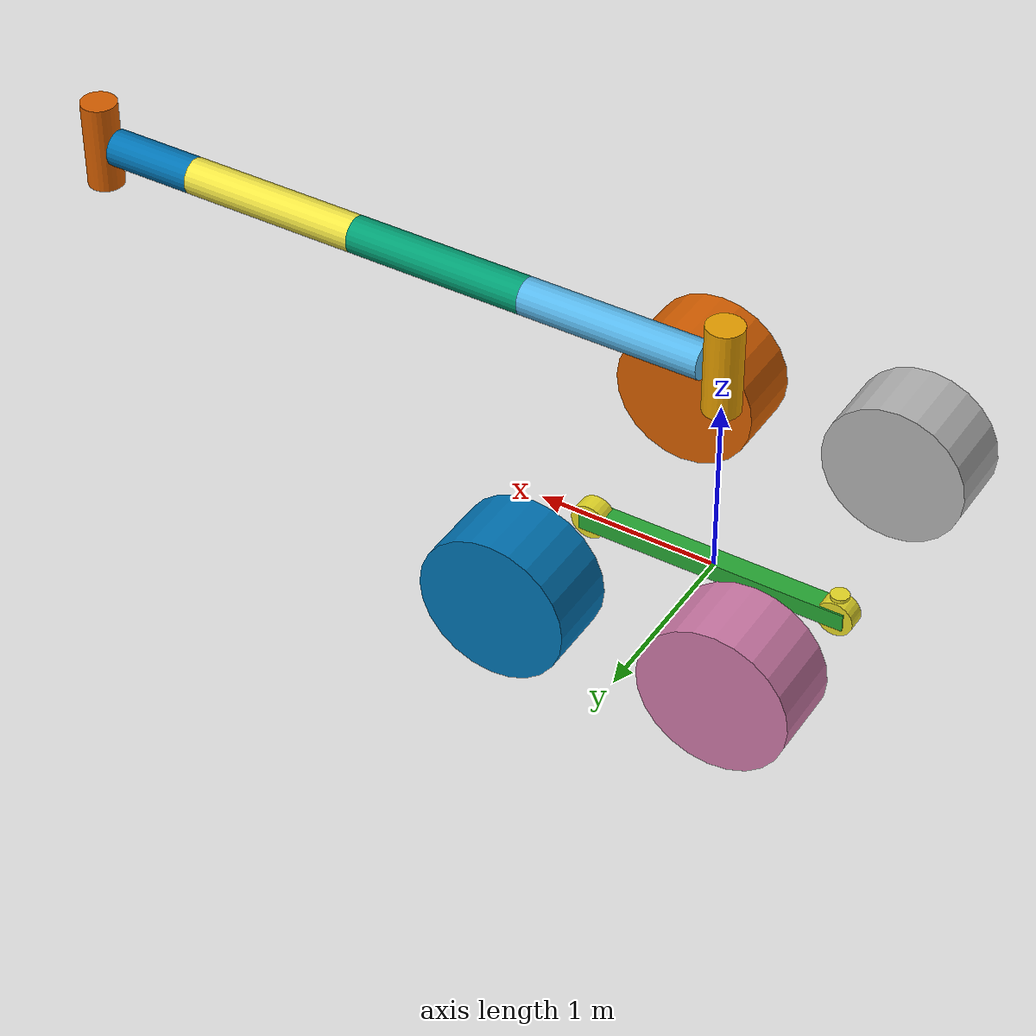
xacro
<?xml version="1.0"?>
<robot name="mobile_manipulator_forklift" xmlns:xacro="http://wiki.ros.org/xacro">
  <!-- Include xacro for inertials, materials and wheels -->
  <xacro:include filename="$(find forklift_project)/urdf/wheel.xacro"/>
  <xacro:include filename="$(find forklift_project)/urdf/common_macros.xacro" />

  <xacro:property name="robot_namespace" value="/mobile_manipulator_forklift"/>

  <!-- Gazebo plugins -->
  <gazebo>
    <!-- Load ros_control plugin -->
    <plugin name="gazebo_ros_control" filename="libgazebo_ros_control.so">
      <robotNamespace>${robot_namespace}</robotNamespace>
      <robotSimType>gazebo_ros_control/DefaultRobotHWSim</robotSimType>
      <legacyModeNS>false</legacyModeNS>
    </plugin>

    <!-- Load gazebo_ros plugin. Publish passive (non-actuated) joints from Gazebo -->
    <plugin name="gazebo_ros_joint_state_publisher" filename="libgazebo_ros_joint_state_publisher.so">
        <robotNamespace>${robot_namespace}</robotNamespace>
        <jointName>
            front_wheel_joint
        </jointName>
        <updateRate>50</updateRate>
        <alwaysOn>true</alwaysOn>
    </plugin>
  </gazebo>

  <!-- Math constants -->
  <xacro:property name="deg_to_rad" value="0.01745329251994329577"/>

  <!-- Robot base dimensions -->
  <xacro:property name="base_length" value="1.5" />
  <xacro:property name="base_width" value="0.12" />
  <xacro:property name="base_height" value="0.1" />
  <xacro:property name="base_mass" value="5" />

  <!-- Wheel link dimensions -->
  <xacro:property name="wheel_radius" value="0.1" />
  <xacro:property name="wheel_thickness" value="0.1" />
  <xacro:property name="wheel_mass" value="1" />

  <!-- Steering link dimensions -->
  <xacro:property name="steer_radius" value="0.05" />
  <xacro:property name="steer_thickness" value="0.02" />
  <xacro:property name="steer_mass" value="1" />

  <!-- Axle positions -->
  <xacro:property name="axle_offset" value="1.45" />
  <xacro:property name="steer_offset" value="0.02" />

  <!-- Base link -->
  <link name="base_link">
    <visual>
      <origin xyz="0 0 0" rpy="0 0 0"/>
      <geometry>
        <box size="${base_length} ${base_width} ${base_height}"/>
      </geometry>
      <material name="green" />
    </visual>
    <collision>
      <origin xyz="0 0 0" rpy="0 0 0"/>
      <geometry>
        <box size="${base_length} ${base_width} ${base_height}"/>
      </geometry>
    </collision>
    <xacro:solid_cuboid_inertial
        rpy="0 0 0" xyz="0 0 0"
        mass="${base_mass}"
        x="${base_length}" y="${base_width}" z="${base_height}" />
  </link>

  <!-- Front steer and rear wheel joints required for ackermann_steering_controller -->
  <xacro:front_steer
    name="front"
    parent="base"
    steer_radius="${steer_radius}"
    steer_thickness="${steer_thickness}"
    steer_mass="${steer_mass}"
    base_length="${base_length}"
    base_width="${base_width}"
    axle_offset="${axle_offset}"
    steer_height="${wheel_radius+steer_offset}">
  </xacro:front_steer>

  <xacro:front_wheel
    name="front"
    parent="front_steer"
    wheel_radius="${wheel_radius}"
    wheel_thickness="${wheel_thickness}"
    wheel_mass="${wheel_mass}">
    <origin xyz="0 0 ${-wheel_radius-steer_offset}" rpy="${-90 * deg_to_rad} 0 0"/>
  </xacro:front_wheel>

  <xacro:rear_wheel
    name="rear"
    parent="base"
    wheel_radius="${wheel_radius}"
    wheel_thickness="${wheel_thickness}"
    wheel_mass="${wheel_mass}">
    <origin xyz="${-base_length/2+axle_offset} 0 0" rpy="${-90 * deg_to_rad} 0 0"/>
  </xacro:rear_wheel>

  <!-- Colour -->
  <gazebo reference="base_link">
    <material>Gazebo/Green</material>
  </gazebo>

  <!-- FRONT LEFT WHEEL -->
<joint type="continuous" name="wheel_front_left_joint">
  <origin xyz="0.60 0.95 0.30" rpy="-${pi/2} 0 0"/>
  <child link="wheel_front_left_link"/>
  <parent link="base_link"/>
  <axis xyz="0 0 1" rpy="0 0 0"/>
  <limit effort="100" velocity="100"/>
</joint>

<xacro:link_cylinder link_name="wheel_front_left_link" radius="0.4" length="0.4" density="1" mesh_name="nofile" >
  <!-- origin visual -->
  <origin xyz="0 0 0" rpy="0 0 0"/>
  <!-- origin collision -->
  <origin xyz="0 0 0" rpy="0 0 0"/>
  <!-- origin interia -->
  <origin xyz="0 0 0" rpy="0 0 0"/>
</xacro:link_cylinder>

<!-- FRONT RIGHT WHEEL -->
<joint type="continuous" name="wheel_front_right_joint">
  <origin xyz="0.60 -0.95 0.30" rpy="-${pi/2} 0 0"/>
  <child link="wheel_front_right_link"/>
  <parent link="base_link"/>
  <axis xyz="0 0 1" rpy="0 0 0"/>
  <limit effort="100" velocity="100"/>
</joint>

<xacro:link_cylinder link_name="wheel_front_right_link" radius="0.4" length="0.4" density="1" >
  <!-- origin visual -->
  <origin xyz="0 0 0" rpy="0 0 0"/>
  <!-- origin collision -->
  <origin xyz="0 0 0" rpy="0 0 0"/>
  <!-- origin interia -->
  <origin xyz="0 0 0" rpy="0 0 0"/>
</xacro:link_cylinder>

<!-- REAR LEFT WHEEL -->
<joint type="continuous" name="wheel_rear_left_joint">
  <origin xyz="-0.60 0.95 0.30" rpy="-${pi/2} 0 0"/>
  <child link="wheel_rear_left_link"/>
  <parent link="base_link"/>
  <axis xyz="0 0 1" rpy="0 0 0"/>
  <limit effort="100" velocity="100"/>
</joint>

<xacro:link_cylinder link_name="wheel_rear_left_link" radius="0.4" length="0.4" density="1" mesh_name="nofile" >
  <!-- origin visual -->
  <origin xyz="0 0 0" rpy="0 0 0"/>
  <!-- origin collision -->
  <origin xyz="0 0 0" rpy="0 0 0"/>
  <!-- origin interia -->
  <origin xyz="0 0 0" rpy="0 0 0"/>
</xacro:link_cylinder>

<!-- REAR RIGHT WHEEL -->
<joint type="continuous" name="wheel_rear_right_joint">
  <origin xyz="-0.60 -0.95 0.30" rpy="-${pi/2} 0 0"/>
  <child link="wheel_rear_right_link"/>
  <parent link="base_link"/>
  <axis xyz="0 0 1" rpy="0 0 0"/>
  <limit effort="100" velocity="100"/>
</joint>

<xacro:link_cylinder link_name="wheel_rear_right_link" radius="0.4" length="0.4" density="1" mesh_name="nofile" >
  <!-- origin visual -->
  <origin xyz="0 0 0" rpy="0 0 0"/>
  <!-- origin collision -->
  <origin xyz="0 0 0" rpy="0 0 0"/>
  <!-- origin interia -->
  <origin xyz="0 0 0" rpy="0 0 0"/>
</xacro:link_cylinder>

  <!-- ROBOTIC ARM -->

  <!-- ARM BASE -->
  <joint type="revolute" name="arm_base_joint">
    <origin xyz="0 0 1" rpy="0 0 0"/>
    <child link="arm_base_link"/>
    <parent link="base_link"/>
    <axis xyz="0 0 1" rpy="0 0 0"/>
    <limit effort="100" velocity="100" lower="-${pi}" upper="${pi}"/>
  </joint>
 
  <xacro:link_cylinder link_name="arm_base_link" radius="0.1" length="0.5" density="1" mesh_name="nofile" >
    <!-- origin visual -->
    <origin xyz="0 0 0.25" rpy="0 0 0"/>
    <!-- origin collision -->
    <origin xyz="0 0 0.25" rpy="0 0 0"/>
    <!-- origin interia -->
    <origin xyz="0 0 0.25" rpy="0 0 0"/>
  </xacro:link_cylinder>
 
<transmission name="arm_base_tran">
  <type>transmission_interface/SimpleTransmission</type>
  <joint name="arm_base_joint">
    <hardwareInterface>hardware_interface/PositionJointInterface</hardwareInterface>
  </joint>
  <actuator name="arm_base_motor">
    <hardwareInterface>hardware_interface/PositionJointInterface</hardwareInterface>
    <mechanicalReduction>1</mechanicalReduction>
  </actuator>
</transmission>
 
  <!-- LINK 1 -->
  <joint type="revolute" name="link_1_joint">
    <origin xyz="0.1 0 0.25" rpy="0 1.57079633 0"/>
    <child link="link_1_link"/>
    <parent link="arm_base_link"/>
    <axis xyz="0 1 0" rpy="0 0 0"/>
    <limit effort="100" velocity="100" lower="-${pi}" upper="${pi}"/>
  </joint>
 
  <xacro:link_cylinder link_name="link_1_link" radius="0.1" length="1" density="1" mesh_name="nofile" >
    <!-- origin visual -->
    <origin xyz="0 0 0.5" rpy="0 0 0"/>
    <!-- origin collision -->
    <origin xyz="0 0 0.5" rpy="0 0 0"/>
    <!-- origin interia -->
    <origin xyz="0 0 0.5" rpy="0 0 0"/>
  </xacro:link_cylinder>
 
<transmission name="link_1_tran">
  <type>transmission_interface/SimpleTransmission</type>
  <joint name="link_1_joint">
    <hardwareInterface>hardware_interface/PositionJointInterface</hardwareInterface>
  </joint>
  <actuator name="link_1_motor">
    <hardwareInterface>hardware_interface/PositionJointInterface</hardwareInterface>
    <mechanicalReduction>1</mechanicalReduction>
  </actuator>
</transmission>

    <!-- LINK 2 -->
    <joint type="revolute" name="link_2_joint">
      <origin xyz="0 0 1" rpy="0 0 0"/>
      <child link="link_2_link"/>
      <parent link="link_1_link"/>
      <axis xyz="0 1 0" rpy="0 0 0"/>
      <limit effort="100" velocity="100" lower="-${pi}" upper="${pi}"/>
    </joint>

    <xacro:link_cylinder link_name="link_2_link" radius="0.1" length="1" density="1" mesh_name="nofile" >
      <!-- origin visual -->
      <origin xyz="0 0 0.5" rpy="0 0 0"/>
      <!-- origin collision -->
      <origin xyz="0 0 0.5" rpy="0 0 0"/>
      <!-- origin interia -->
      <origin xyz="0 0 0.5" rpy="0 0 0"/>
    </xacro:link_cylinder>

  <transmission name="link_2_tran">
    <type>transmission_interface/SimpleTransmission</type>
    <joint name="link_2_joint">
      <hardwareInterface>hardware_interface/PositionJointInterface</hardwareInterface>
    </joint>
    <actuator name="link_2_motor">
      <hardwareInterface>hardware_interface/PositionJointInterface</hardwareInterface>
      <mechanicalReduction>1</mechanicalReduction>
    </actuator>
  </transmission>

    <!-- LINK 3 -->
    <joint type="revolute" name="link_3_joint">
      <origin xyz="0 0 1" rpy="0 0 0"/>
      <child link="link_3_link"/>
      <parent link="link_2_link"/>
      <axis xyz="0 1 0" rpy="0 0 0"/>
      <limit effort="100" velocity="100" lower="-${pi}" upper="${pi}"/>
    </joint>

    <xacro:link_cylinder link_name="link_3_link" radius="0.1" length="1" density="1" mesh_name="nofile" >
      <!-- origin visual -->
      <origin xyz="0 0 0.5" rpy="0 0 0"/>
      <!-- origin collision -->
      <origin xyz="0 0 0.5" rpy="0 0 0"/>
      <!-- origin interia -->
      <origin xyz="0 0 0.5" rpy="0 0 0"/>
    </xacro:link_cylinder>

    <transmission name="link_3_tran">
      <type>transmission_interface/SimpleTransmission</type>
      <joint name="link_3_joint">
        <hardwareInterface>hardware_interface/PositionJointInterface</hardwareInterface>
      </joint>
      <actuator name="link_3_motor">
        <hardwareInterface>hardware_interface/PositionJointInterface</hardwareInterface>
        <mechanicalReduction>1</mechanicalReduction>
      </actuator>
    </transmission>

    <!-- LINK 4 -->
    <joint type="revolute" name="link_4_joint">
      <origin xyz="0 0 1" rpy="0 0 0"/>
      <child link="link_4_link"/>
      <parent link="link_3_link"/>
      <axis xyz="0 1 0" rpy="0 0 0"/>
      <limit effort="100" velocity="100" lower="-${pi}" upper="${pi}"/>
    </joint>

    <xacro:link_cylinder link_name="link_4_link" radius="0.1" length="0.5" density="1" mesh_name="nofile" >
      <!-- origin visual -->
      <origin xyz="0 0 0.25" rpy="0 0 0"/>
      <!-- origin collision -->
      <origin xyz="0 0 0.25" rpy="0 0 0"/>
      <!-- origin interia -->
      <origin xyz="0 0 0.25" rpy="0 0 0"/>
    </xacro:link_cylinder>

  <transmission name="link_4_tran">
    <type>transmission_interface/SimpleTransmission</type>
    <joint name="link_4_joint">
      <hardwareInterface>hardware_interface/PositionJointInterface</hardwareInterface>
    </joint>
    <actuator name="link_4_motor">
      <hardwareInterface>hardware_interface/PositionJointInterface</hardwareInterface>
      <mechanicalReduction>1</mechanicalReduction>
    </actuator>
  </transmission>
 <!-- endret z fra 1 til 0 her -->

  <!-- LINK 5 -->
  <joint type="revolute" name="link_5_joint">
    <origin xyz="0 0 0.5" rpy="0 0 0"/>
    <child link="link_5_link"/>
    <parent link="link_4_link"/>
    <axis xyz="0 0 1" rpy="0 0 0"/>
    <limit effort="100" velocity="100" lower="-${pi}" upper="${pi}"/>
  </joint>

  <xacro:link_cylinder link_name="link_5_link" radius="0.1" length="0.5" density="1" mesh_name="nofile" >
    <!-- origin visual -->2
    <origin xyz="0 0 0.1" rpy="0 ${pi/2} 0"/>
    <!-- origin collision -->
    <origin xyz="0 0 0.1" rpy="0 0 0"/>
    <!-- origin interia -->
    <origin xyz="0 0 0.1" rpy="0 ${pi/2} 0"/>
  </xacro:link_cylinder>

<transmission name="link_5_tran">
  <type>transmission_interface/SimpleTransmission</type>
  <joint name="link_5_joint">
    <hardwareInterface>hardware_interface/PositionJointInterface</hardwareInterface>
  </joint>
  <actuator name="link_5_motor">
    <hardwareInterface>hardware_interface/PositionJointInterface</hardwareInterface>
    <mechanicalReduction>1</mechanicalReduction>
  </actuator>
</transmission>

</robot>

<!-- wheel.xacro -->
<robot name="wheel" xmlns:xacro="http://wiki.ros.org/xacro">
  <!-- Include xacro for materials and inertials -->
  <xacro:include filename="$(find forklift_project)/urdf/materials.xacro"/>
  <xacro:include filename="$(find forklift_project)/urdf/inertials.xacro"/>

  <!-- Properties -->
  <xacro:property name="steer_effort" value="10.0"/>
  <xacro:property name="steer_velocity" value="5.0"/>
  <xacro:property name="steer_limit_deg" value="45.0"/>

  <!-- Bicycle model front steering link (required for steer_drive_controller) -->
  <xacro:macro name="front_steer"
    params="
      name
      parent
      steer_radius
      steer_thickness
      steer_mass
      base_length
      base_width
      axle_offset
      steer_height">
    <link name="${name}_steer_link">
      <visual>
        <origin xyz="0 0 0" rpy="0 0 0"/>
        <geometry>
          <cylinder radius="${steer_radius}" length="${steer_thickness}"/>
        </geometry>
        <material name="yellow" />
      </visual>
      <collision>
        <origin xyz="0 0 0" rpy="0 0 0"/>
        <geometry>
          <cylinder radius="${steer_radius}" length="${steer_thickness}"/>
        </geometry>
      </collision>
      <xacro:solid_cylinder_inertial
          rpy="0 0 0" xyz="0 0 0"
          mass="${steer_mass}"
          radius="${steer_radius}" length="${steer_thickness}" />
    </link>

    <joint name="${name}_steer_joint" type="revolute">
      <parent link="${parent}_link"/>
      <child link="${name}_steer_link"/>
      <origin xyz="${base_length/2-axle_offset} 0 ${steer_height}" rpy="0 0 0"/>
      <axis xyz="0 0 1"/>
      <limit effort="${steer_effort}"
             lower="${-45.0 * deg_to_rad}" upper="${45.0 * deg_to_rad}"
             velocity="${steer_velocity}"/>
    </joint>

    <transmission name="${name}_steer_joint_trans">
      <type>transmission_interface/SimpleTransmission</type>
      <actuator name="${name}_steer_joint_motor">
        <mechanicalReduction>1</mechanicalReduction>
        <hardwareInterface>hardware_interface/PositionJointInterface</hardwareInterface>
      </actuator>
      <joint name="${name}_steer_joint">
        <hardwareInterface>hardware_interface/PositionJointInterface</hardwareInterface>
      </joint>
    </transmission>

    <gazebo reference="${name}_steer_link">
      <material>Gazebo/Yellow</material>
    </gazebo>
  </xacro:macro>

  <!-- Car steering model front (steerable) wheel links (left/right) -->
  <xacro:macro name="front_wheel_lr"
    params="
      name
      parent
      reflect
      wheel_radius
      wheel_thickness
      wheel_mass
      steer_radius
      steer_thickness
      steer_mass
      base_length
      base_width
      axle_offset
      steer_height">
    <link name="${name}_steer_link">
      <visual>
        <origin xyz="0 0 0" rpy="0 0 0"/>
        <geometry>
          <cylinder radius="${steer_radius}" length="${steer_thickness}"/>
        </geometry>
        <material name="blue" />
      </visual>
      <collision>
        <origin xyz="0 0 0" rpy="0 0 0"/>
        <geometry>
          <cylinder radius="${steer_radius}" length="${steer_thickness}"/>
        </geometry>
      </collision>
      <xacro:solid_cylinder_inertial
          rpy="0 0 0" xyz="0 0 0"
          mass="${steer_mass}"
          radius="${steer_radius}" length="${steer_thickness}" />
    </link>

    <joint name="${name}_steer_joint" type="revolute">
      <parent link="${parent}_link"/>
      <child link="${name}_steer_link"/>
      <origin xyz="${base_length/2-axle_offset} ${reflect*(base_width/2+axle_offset)} ${steer_height}" rpy="0 0 0"/>
      <axis xyz="0 0 1"/>
      <limit effort="${steer_effort}"
             lower="${steer_limit_deg * deg_to_rad * -1.0}" upper="${steer_limit_deg * deg_to_rad}"
             velocity="${steer_velocity}"/>
    </joint>

    <link name="${name}_wheel_link">
      <visual>
        <origin xyz="0 0 0" rpy="0 0 0"/>
        <geometry>
          <cylinder radius="${wheel_radius}" length="${wheel_thickness}"/>
        </geometry>
        <material name="red" />
      </visual>
      <collision>
        <origin xyz="0 0 0" rpy="0 0 0"/>
        <geometry>
          <cylinder radius="${wheel_radius}" length="${wheel_thickness}"/>
        </geometry>
      </collision>
      <xacro:solid_cylinder_inertial
          rpy="0 0 0" xyz="0 0 0"
          mass="${wheel_mass}"
          radius="${wheel_radius}" length="${wheel_thickness}" />
    </link>

    <joint name="${name}_wheel_joint" type="continuous">
      <parent link="${name}_steer_link"/>
      <child link="${name}_wheel_link"/>
      <origin xyz="0 0 ${-steer_height}" rpy="${-90 * deg_to_rad} 0 0"/>
      <axis xyz="0 0 1"/>
    </joint>

    <transmission name="${name}_steer_joint_trans">
      <type>transmission_interface/SimpleTransmission</type>
      <actuator name="${name}_steer_joint_motor">
        <mechanicalReduction>1</mechanicalReduction>
        <hardwareInterface>hardware_interface/PositionJointInterface</hardwareInterface>
      </actuator>
      <joint name="${name}_steer_joint">
        <hardwareInterface>hardware_interface/PositionJointInterface</hardwareInterface>
      </joint>
    </transmission>

    <transmission name="${name}_wheel_joint_trans">
      <type>transmission_interface/SimpleTransmission</type>
      <actuator name="${name}_wheel_joint_motor">
        <mechanicalReduction>1</mechanicalReduction>
        <hardwareInterface>hardware_interface/VelocityJointInterface</hardwareInterface>
      </actuator>
      <joint name="${name}_wheel_joint">
        <hardwareInterface>hardware_interface/VelocityJointInterface</hardwareInterface>
      </joint>
    </transmission>

    <gazebo reference="${name}_steer_link">
      <material>Gazebo/Blue</material>
    </gazebo>

    <gazebo reference="${name}_wheel_link">
      <material>Gazebo/Red</material>
    </gazebo>
  </xacro:macro>

  <!-- Bicycle model rear wheel link (required for steer_drive_controller) -->
  <xacro:macro name="rear_wheel"
    params="
      name
      parent
      wheel_radius
      wheel_thickness
      wheel_mass
      *origin">
    <link name="${name}_wheel_link">
      <visual>
        <origin xyz="0 0 0" rpy="0 0 0"/>
        <geometry>
          <cylinder radius="${wheel_radius}" length="${wheel_thickness}"/>
        </geometry>
        <material name="yellow" />
      </visual>
      <collision>
        <origin xyz="0 0 0" rpy="0 0 0"/>
        <geometry>
          <cylinder radius="${wheel_radius}" length="${wheel_thickness}"/>
        </geometry>
      </collision>
      <xacro:solid_cylinder_inertial
          rpy="0 0 0" xyz="0 0 0"
          mass="${wheel_mass}"
          radius="${wheel_radius}" length="${wheel_thickness}" />
    </link>

    <joint name="${name}_wheel_joint" type="continuous">
      <parent link="${parent}_link"/>
      <child link="${name}_wheel_link"/>
      <xacro:insert_block name="origin"/>
      <axis xyz="0 0 1"/>
    </joint>

    <transmission name="${name}_wheel_joint_trans">
      <type>transmission_interface/SimpleTransmission</type>
      <actuator name="${name}_wheel_joint_motor">
        <mechanicalReduction>1</mechanicalReduction>
        <hardwareInterface>hardware_interface/VelocityJointInterface</hardwareInterface>
      </actuator>
      <joint name="${name}_wheel_joint">
        <hardwareInterface>hardware_interface/VelocityJointInterface</hardwareInterface>
      </joint>
    </transmission>

    <gazebo reference="${name}_wheel_link">
      <material>Gazebo/Yellow</material>
    </gazebo>
  </xacro:macro>

  <!-- Bicycle model front wheel link (passive - no transmission) -->
  <xacro:macro name="front_wheel"
    params="
      name
      parent
      wheel_radius
      wheel_thickness
      wheel_mass
      *origin">
    <link name="${name}_wheel_link">
      <visual>
        <origin xyz="0 0 0" rpy="0 0 0"/>
        <geometry>
          <cylinder radius="${wheel_radius}" length="${wheel_thickness}"/>
        </geometry>
        <material name="yellow" />
      </visual>
      <collision>
        <origin xyz="0 0 0" rpy="0 0 0"/>
        <geometry>
          <cylinder radius="${wheel_radius}" length="${wheel_thickness}"/>
        </geometry>
      </collision>
      <xacro:solid_cylinder_inertial
          rpy="0 0 0" xyz="0 0 0"
          mass="${wheel_mass}"
          radius="${wheel_radius}" length="${wheel_thickness}" />
    </link>

    <joint name="${name}_wheel_joint" type="continuous">
      <parent link="${parent}_link"/>
      <child link="${name}_wheel_link"/>
      <xacro:insert_block name="origin"/>
      <axis xyz="0 0 1"/>
    </joint>

    <gazebo reference="${name}_wheel_link">
      <material>Gazebo/Yellow</material>
    </gazebo>

    <gazebo reference="${name}_wheel_joint">
      <provideFeedback>true</provideFeedback>
    </gazebo>
  </xacro:macro>

  <!-- Car steering model rear wheel links (left/right) -->
  <xacro:macro name="rear_wheel_lr"
    params="
      name
      parent
      wheel_radius
      wheel_thickness
      wheel_mass
      *origin">
    <link name="${name}_wheel_link">
      <visual>
        <origin xyz="0 0 0" rpy="0 0 0"/>
        <geometry>
          <cylinder radius="${wheel_radius}" length="${wheel_thickness}"/>
        </geometry>
        <material name="red" />
      </visual>
      <collision>
        <origin xyz="0 0 0" rpy="0 0 0"/>
        <geometry>
          <cylinder radius="${wheel_radius}" length="${wheel_thickness}"/>
        </geometry>
      </collision>
      <xacro:solid_cylinder_inertial
          rpy="0 0 0" xyz="0 0 0"
          mass="${wheel_mass}"
          radius="${wheel_radius}" length="${wheel_thickness}" />
    </link>

    <joint name="${name}_wheel_joint" type="continuous">
      <parent link="${parent}_link"/>
      <child link="${name}_wheel_link"/>
      <xacro:insert_block name="origin"/>
      <axis xyz="0 0 1"/>
    </joint>

    <transmission name="${name}_wheel_joint_trans">
      <type>transmission_interface/SimpleTransmission</type>
      <actuator name="${name}_wheel_joint_motor">
        <mechanicalReduction>1</mechanicalReduction>
        <hardwareInterface>hardware_interface/VelocityJointInterface</hardwareInterface>
      </actuator>
      <joint name="${name}_wheel_joint">
        <hardwareInterface>hardware_interface/VelocityJointInterface</hardwareInterface>
      </joint>
    </transmission>

    <gazebo reference="${name}_wheel_link">
      <material>Gazebo/Red</material>
    </gazebo>
  </xacro:macro>
</robot>

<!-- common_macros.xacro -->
<robot name="xacro_macros" xmlns:xacro="http://ros.org/wiki/xacro">

  <xacro:macro name="link_box" params="link_name length width height density:=1 mesh_name:='nofile' *origin_vis *origin_col *origin_inertial">
    <xacro:property name="mass" value="${length*height*width*density}" />
    <link name="${link_name}">
      <visual>
        <xacro:insert_block name="origin_vis" />
        <geometry>
          <xacro:if value="${mesh_name == 'nofile'}">
            <box size="${length} ${width} ${height}"/>
          </xacro:if>
          <xacro:unless value="${mesh_name == 'nofile'}">
            <mesh filename="${mesh_name}" />
          </xacro:unless>
        </geometry>
      </visual>
      <collision>
        <xacro:insert_block name="origin_col" />
        <geometry>
          <box size="${length} ${width} ${height}"/>
        </geometry>
      </collision>
      <inertial>
        <xacro:insert_block name="origin_inertial" />
        <mass value="${mass}"/>
        <inertia
          ixx="${mass*(pow(height,2) + pow(width,2))/12}" ixy="0.0" ixz="0.0"
          iyy="${mass*(pow(length,2) + pow(height,2))/12}" iyz="0.0"
          izz="${mass*(pow(length,2) + pow(width,2))/12}"/>
      </inertial>
    </link>
  </xacro:macro>

  <xacro:macro name="link_cylinder" params="link_name radius length density:=1 mesh_name:='nofile' *origin_vis *origin_col *origin_inertial">
    <xacro:property name="mass" value="${pi*length*pow(radius,2)*density}" />
    <link name="${link_name}">
      <visual>
        <xacro:insert_block name="origin_vis" />
        <geometry>
          <xacro:if value="${mesh_name == 'nofile'}">
            <cylinder length="${length}" radius="${radius}"/>
          </xacro:if>
          <xacro:unless value="${mesh_name == 'nofile'}">
            <mesh filename="${mesh_name}" />
          </xacro:unless>
        </geometry>
      </visual>
      <collision>
        <xacro:insert_block name="origin_col" />
        <geometry>
          <cylinder length="${length}" radius="${radius}"/>
        </geometry>
      </collision>
      <inertial>
        <xacro:insert_block name="origin_inertial" />
        <mass value="${mass}"/>
        <inertia
          ixx="${mass*(3*pow(radius,2)+pow(length,2))/12}" ixy="0.0" ixz="0.0"
          iyy="${mass*(3*pow(radius,2)+pow(length,2))/12}" iyz="0.0"
          izz="${mass*pow(radius,2)/2}"/>
      </inertial>
    </link>
  </xacro:macro>

  <xacro:macro name="link_sphere" params="link_name radius density:=1 mesh_name:='nofile' *origin_vis *origin_col *origin_inertial">
    <xacro:property name="mass" value="${(4/3)*pi*pow(radius,3)}" />
    <link name="${link_name}">
      <visual>
        <xacro:insert_block name="origin_vis" />
        <geometry>
          <xacro:if value="${mesh_name == 'nofile'}">
            <sphere radius="${radius}"/>
          </xacro:if>
          <xacro:unless value="${mesh_name == 'nofile'}">
            <mesh filename="${mesh_name}" />
          </xacro:unless>
        </geometry>
      </visual>
      <collision>
        <xacro:insert_block name="origin_col" />
        <geometry>
          <sphere radius="${radius}"/>
        </geometry>
      </collision>
      <inertial>
        <xacro:insert_block name="origin_inertial" />
        <mass value="${mass}"/>
        <inertia
          ixx="${2*mass*pow(radius,2)/5}" ixy="0.0" ixz="0.0"
          iyy="${2*mass*pow(radius,2)/5}" iyz="0.0"
          izz="${2*mass*pow(radius,2)/5}"/>
      </inertial>
    </link>
  </xacro:macro>

</robot>
